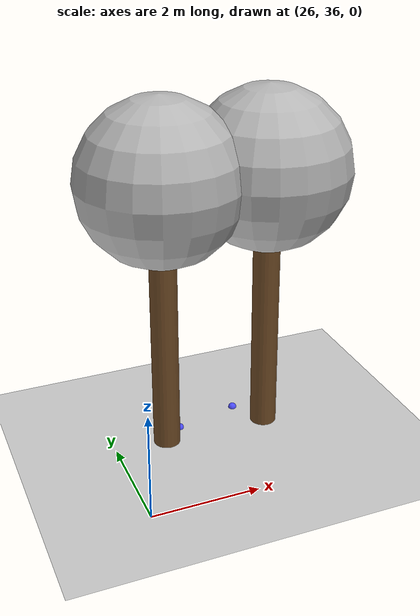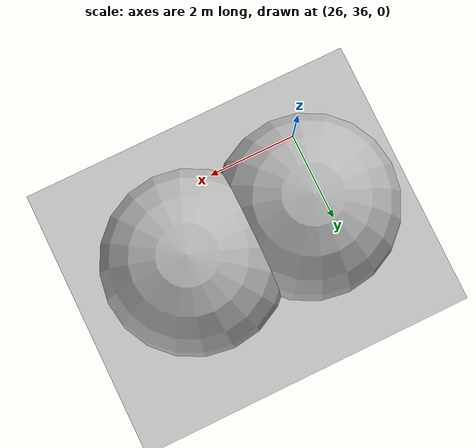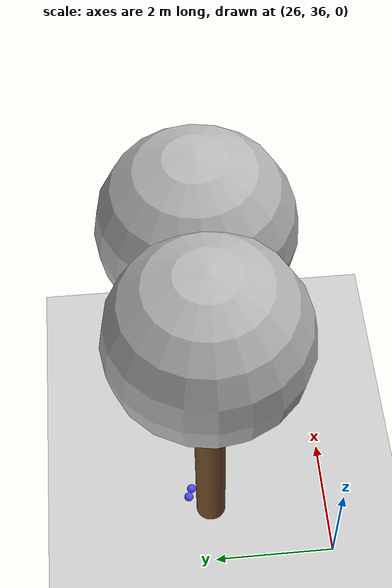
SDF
<sdf version="1.7">
 <world name="default">
  <model name="ground_plane">
   <static>1</static>
   <link name="link">
    <collision name="collision">
     <geometry><plane><normal>0 0 1</normal><size>100 100</size></plane></geometry>
     <surface>
      <contact><collide_bitmask>65535</collide_bitmask></contact>
      <friction><ode><mu>100</mu><mu2>50</mu2></ode></friction>
     </surface>
    </collision>
    <visual name="visual">
     <cast_shadows>0</cast_shadows>
     <geometry><plane><normal>0 0 1</normal><size>100 100</size></plane></geometry>
     <material>
      <script><uri>file://media/materials/scripts/gazebo.material</uri><name>Gazebo/Grey</name></script>
     </material>
    </visual>
   </link>
  </model>
  <model name="tree_simple_19">
   <static>1</static>
   <link name="link">
    <pose>0 0 0.1 0 -0 0</pose>
    <inertial>
     <mass>666</mass>
     <inertia>
      <ixx>0.0861167</ixx>
      <ixy>0</ixy>
      <ixz>0</ixz>
      <iyy>0.0861167</iyy>
      <iyz>0</iyz>
      <izz>0.0861167</izz>
     </inertia>
    </inertial>
    <collision name="collision_trunk">
     <pose>0 0 2 0 -0 0</pose>
     <geometry><cylinder><radius>0.25</radius><length>4</length></cylinder></geometry>
     <surface>
      <contact>
       <poissons_ratio>0.347</poissons_ratio>
       <elastic_modulus>8.8e+09</elastic_modulus>
       <ode><kp>100000</kp><kd>100</kd><max_vel>100</max_vel><min_depth>0.001</min_depth></ode>
      </contact>
      <friction>
       <torsional>
        <coefficient>1</coefficient>
        <use_patch_radius>0</use_patch_radius>
        <surface_radius>0.01</surface_radius>
       </torsional>
      </friction>
     </surface>
    </collision>
    <collision name="collision_treetop">
     <pose>0 0 5.2 0 -0 0</pose>
     <geometry><sphere><radius>1.5</radius></sphere></geometry>
     <surface>
      <contact>
       <poissons_ratio>0.347</poissons_ratio>
       <elastic_modulus>8.8e+09</elastic_modulus>
       <ode><kp>100000</kp><kd>100</kd><max_vel>100</max_vel><min_depth>0.001</min_depth></ode>
      </contact>
      <friction>
       <torsional>
        <coefficient>1</coefficient>
        <use_patch_radius>0</use_patch_radius>
        <surface_radius>0.01</surface_radius>
       </torsional>
      </friction>
     </surface>
    </collision>
    <visual name="trunk">
     <pose>0 0 2 0 -0 0</pose>
     <geometry><cylinder><radius>0.25</radius><length>4</length></cylinder></geometry>
     <material>
      <script>
       <uri>model://tree_simple/scripts</uri>
       <uri>model://tree_simple/materials/textures</uri>
       <name>TreeSimple/Trunk</name>
      </script>
     </material>
    </visual>
    <visual name="treetop">
     <pose>0 0 5.2 0 -0 0</pose>
     <geometry><sphere><radius>1.5</radius></sphere></geometry>
     <material>
      <script>
       <uri>model://tree_simple/scripts</uri>
       <uri>model://tree_simple/materials/textures</uri>
       <name>TreeSimple/Treetop</name>
      </script>
     </material>
    </visual>
   </link>
   <pose>27 38 -0.1 0 -0 0</pose>
  </model>
  <model name="tree_simple_20">
   <static>1</static>
   <link name="link">
    <pose>0 0 0.1 0 -0 0</pose>
    <inertial>
     <mass>666</mass>
     <inertia>
      <ixx>0.0861167</ixx>
      <ixy>0</ixy>
      <ixz>0</ixz>
      <iyy>0.0861167</iyy>
      <iyz>0</iyz>
      <izz>0.0861167</izz>
     </inertia>
    </inertial>
    <collision name="collision_trunk">
     <pose>0 0 2 0 -0 0</pose>
     <geometry><cylinder><radius>0.25</radius><length>4</length></cylinder></geometry>
     <surface>
      <contact>
       <poissons_ratio>0.347</poissons_ratio>
       <elastic_modulus>8.8e+09</elastic_modulus>
       <ode><kp>100000</kp><kd>100</kd><max_vel>100</max_vel><min_depth>0.001</min_depth></ode>
      </contact>
      <friction>
       <torsional>
        <coefficient>1</coefficient>
        <use_patch_radius>0</use_patch_radius>
        <surface_radius>0.01</surface_radius>
       </torsional>
      </friction>
     </surface>
    </collision>
    <collision name="collision_treetop">
     <pose>0 0 5.2 0 -0 0</pose>
     <geometry><sphere><radius>1.5</radius></sphere></geometry>
     <surface>
      <contact>
       <poissons_ratio>0.347</poissons_ratio>
       <elastic_modulus>8.8e+09</elastic_modulus>
       <ode><kp>100000</kp><kd>100</kd><max_vel>100</max_vel><min_depth>0.001</min_depth></ode>
      </contact>
      <friction>
       <torsional>
        <coefficient>1</coefficient>
        <use_patch_radius>0</use_patch_radius>
        <surface_radius>0.01</surface_radius>
       </torsional>
      </friction>
     </surface>
    </collision>
    <visual name="trunk">
     <pose>0 0 2 0 -0 0</pose>
     <geometry><cylinder><radius>0.25</radius><length>4</length></cylinder></geometry>
     <material>
      <script>
       <uri>model://tree_simple/scripts</uri>
       <uri>model://tree_simple/materials/textures</uri>
       <name>TreeSimple/Trunk</name>
      </script>
     </material>
    </visual>
    <visual name="treetop">
     <pose>0 0 5.2 0 -0 0</pose>
     <geometry><sphere><radius>1.5</radius></sphere></geometry>
     <material>
      <script>
       <uri>model://tree_simple/scripts</uri>
       <uri>model://tree_simple/materials/textures</uri>
       <name>TreeSimple/Treetop</name>
      </script>
     </material>
    </visual>
   </link>
   <pose>29 38 -0.1 0 -0 0</pose>
  </model>
  <model name="seed_blue_41">
   <link name="link">
    <inertial>
     <mass>1</mass>
     <inertia><ixx>0.1</ixx><ixy>0</ixy><ixz>0</ixz><iyy>0.1</iyy><iyz>0</iyz><izz>0.1</izz></inertia>
    </inertial>
    <visual name="visual">
     <geometry><sphere><radius>0.08</radius></sphere></geometry>
     <material>
      <script><name>Gazebo/Grey</name><uri>file://media/materials/scripts/gazebo.material</uri></script>
      <shader type="pixel"><normal_map>__default__</normal_map></shader>
      <ambient>0.3 0.3 1 1</ambient>
      <diffuse>0.7 0.7 0.7 1</diffuse>
      <specular>0.01 0.01 0.01 1</specular>
      <emissive>0 0 0 1</emissive>
     </material>
    </visual>
    <collision name="collision">
     <geometry><sphere><radius>0.0005</radius></sphere></geometry>
     <surface>
      <friction>
       <ode><mu>1</mu><mu2>1</mu2><fdir1>0 0 0</fdir1><slip1>0</slip1><slip2>0</slip2></ode>
       <torsional>
        <coefficient>1</coefficient>
        <patch_radius>0</patch_radius>
        <surface_radius>0</surface_radius>
        <use_patch_radius>1</use_patch_radius>
        <ode><slip>0</slip></ode>
       </torsional>
      </friction>
      <bounce><restitution_coefficient>0</restitution_coefficient><threshold>1e+06</threshold></bounce>
      <contact>
       <collide_without_contact>0</collide_without_contact>
       <collide_without_contact_bitmask>1</collide_without_contact_bitmask>
       <collide_bitmask>1</collide_bitmask>
       <ode>
        <soft_cfm>0</soft_cfm>
        <soft_erp>0.2</soft_erp>
        <kp>1e+13</kp>
        <kd>1</kd>
        <max_vel>0.01</max_vel>
        <min_depth>0</min_depth>
       </ode>
       <bullet>
        <split_impulse>1</split_impulse>
        <split_impulse_penetration_threshold>-0.01</split_impulse_penetration_threshold>
        <soft_cfm>0</soft_cfm>
        <soft_erp>0.2</soft_erp>
        <kp>1e+13</kp>
        <kd>1</kd>
       </bullet>
      </contact>
     </surface>
    </collision>
   </link>
   <static>0</static>
   <pose>28.6048 38.5979 0.0005 0 -0 0</pose>
  </model>
  <model name="seed_blue_42">
   <link name="link">
    <inertial>
     <mass>1</mass>
     <inertia><ixx>0.1</ixx><ixy>0</ixy><ixz>0</ixz><iyy>0.1</iyy><iyz>0</iyz><izz>0.1</izz></inertia>
    </inertial>
    <visual name="visual">
     <geometry><sphere><radius>0.08</radius></sphere></geometry>
     <material>
      <script><name>Gazebo/Grey</name><uri>file://media/materials/scripts/gazebo.material</uri></script>
      <shader type="pixel"><normal_map>__default__</normal_map></shader>
      <ambient>0.3 0.3 1 1</ambient>
      <diffuse>0.7 0.7 0.7 1</diffuse>
      <specular>0.01 0.01 0.01 1</specular>
      <emissive>0 0 0 1</emissive>
     </material>
    </visual>
    <collision name="collision">
     <geometry><sphere><radius>0.0005</radius></sphere></geometry>
     <surface>
      <friction>
       <ode><mu>1</mu><mu2>1</mu2><fdir1>0 0 0</fdir1><slip1>0</slip1><slip2>0</slip2></ode>
       <torsional>
        <coefficient>1</coefficient>
        <patch_radius>0</patch_radius>
        <surface_radius>0</surface_radius>
        <use_patch_radius>1</use_patch_radius>
        <ode><slip>0</slip></ode>
       </torsional>
      </friction>
      <bounce><restitution_coefficient>0</restitution_coefficient><threshold>1e+06</threshold></bounce>
      <contact>
       <collide_without_contact>0</collide_without_contact>
       <collide_without_contact_bitmask>1</collide_without_contact_bitmask>
       <collide_bitmask>1</collide_bitmask>
       <ode>
        <soft_cfm>0</soft_cfm>
        <soft_erp>0.2</soft_erp>
        <kp>1e+13</kp>
        <kd>1</kd>
        <max_vel>0.01</max_vel>
        <min_depth>0</min_depth>
       </ode>
       <bullet>
        <split_impulse>1</split_impulse>
        <split_impulse_penetration_threshold>-0.01</split_impulse_penetration_threshold>
        <soft_cfm>0</soft_cfm>
        <soft_erp>0.2</soft_erp>
        <kp>1e+13</kp>
        <kd>1</kd>
       </bullet>
      </contact>
     </surface>
    </collision>
   </link>
   <static>0</static>
   <pose>28.9876 37.9865 0.0005 0 -0 0</pose>
  </model>
  <model name="seed_blue_43">
   <link name="link">
    <inertial>
     <mass>1</mass>
     <inertia><ixx>0.1</ixx><ixy>0</ixy><ixz>0</ixz><iyy>0.1</iyy><iyz>0</iyz><izz>0.1</izz></inertia>
    </inertial>
    <visual name="visual">
     <geometry><sphere><radius>0.08</radius></sphere></geometry>
     <material>
      <script><name>Gazebo/Grey</name><uri>file://media/materials/scripts/gazebo.material</uri></script>
      <shader type="pixel"><normal_map>__default__</normal_map></shader>
      <ambient>0.3 0.3 1 1</ambient>
      <diffuse>0.7 0.7 0.7 1</diffuse>
      <specular>0.01 0.01 0.01 1</specular>
      <emissive>0 0 0 1</emissive>
     </material>
    </visual>
    <collision name="collision">
     <geometry><sphere><radius>0.0005</radius></sphere></geometry>
     <surface>
      <friction>
       <ode><mu>1</mu><mu2>1</mu2><fdir1>0 0 0</fdir1><slip1>0</slip1><slip2>0</slip2></ode>
       <torsional>
        <coefficient>1</coefficient>
        <patch_radius>0</patch_radius>
        <surface_radius>0</surface_radius>
        <use_patch_radius>1</use_patch_radius>
        <ode><slip>0</slip></ode>
       </torsional>
      </friction>
      <bounce><restitution_coefficient>0</restitution_coefficient><threshold>1e+06</threshold></bounce>
      <contact>
       <collide_without_contact>0</collide_without_contact>
       <collide_without_contact_bitmask>1</collide_without_contact_bitmask>
       <collide_bitmask>1</collide_bitmask>
       <ode>
        <soft_cfm>0</soft_cfm>
        <soft_erp>0.2</soft_erp>
        <kp>1e+13</kp>
        <kd>1</kd>
        <max_vel>0.01</max_vel>
        <min_depth>0</min_depth>
       </ode>
       <bullet>
        <split_impulse>1</split_impulse>
        <split_impulse_penetration_threshold>-0.01</split_impulse_penetration_threshold>
        <soft_cfm>0</soft_cfm>
        <soft_erp>0.2</soft_erp>
        <kp>1e+13</kp>
        <kd>1</kd>
       </bullet>
      </contact>
     </surface>
    </collision>
   </link>
   <static>0</static>
   <pose>27.37 38.309 0.0005 0 -0 0</pose>
  </model>
  <model name="seed_blue_45">
   <link name="link">
    <inertial>
     <mass>1</mass>
     <inertia><ixx>0.1</ixx><ixy>0</ixy><ixz>0</ixz><iyy>0.1</iyy><iyz>0</iyz><izz>0.1</izz></inertia>
    </inertial>
    <visual name="visual">
     <geometry><sphere><radius>0.08</radius></sphere></geometry>
     <material>
      <script><name>Gazebo/Grey</name><uri>file://media/materials/scripts/gazebo.material</uri></script>
      <shader type="pixel"><normal_map>__default__</normal_map></shader>
      <ambient>0.3 0.3 1 1</ambient>
      <diffuse>0.7 0.7 0.7 1</diffuse>
      <specular>0.01 0.01 0.01 1</specular>
      <emissive>0 0 0 1</emissive>
     </material>
    </visual>
    <collision name="collision">
     <geometry><sphere><radius>0.0005</radius></sphere></geometry>
     <surface>
      <friction>
       <ode><mu>1</mu><mu2>1</mu2><fdir1>0 0 0</fdir1><slip1>0</slip1><slip2>0</slip2></ode>
       <torsional>
        <coefficient>1</coefficient>
        <patch_radius>0</patch_radius>
        <surface_radius>0</surface_radius>
        <use_patch_radius>1</use_patch_radius>
        <ode><slip>0</slip></ode>
       </torsional>
      </friction>
      <bounce><restitution_coefficient>0</restitution_coefficient><threshold>1e+06</threshold></bounce>
      <contact>
       <collide_without_contact>0</collide_without_contact>
       <collide_without_contact_bitmask>1</collide_without_contact_bitmask>
       <collide_bitmask>1</collide_bitmask>
       <ode>
        <soft_cfm>0</soft_cfm>
        <soft_erp>0.2</soft_erp>
        <kp>1e+13</kp>
        <kd>1</kd>
        <max_vel>0.01</max_vel>
        <min_depth>0</min_depth>
       </ode>
       <bullet>
        <split_impulse>1</split_impulse>
        <split_impulse_penetration_threshold>-0.01</split_impulse_penetration_threshold>
        <soft_cfm>0</soft_cfm>
        <soft_erp>0.2</soft_erp>
        <kp>1e+13</kp>
        <kd>1</kd>
       </bullet>
      </contact>
     </surface>
    </collision>
   </link>
   <static>0</static>
   <pose>27.2138 38.369 0.0005 0 -0 0</pose>
  </model>
 </world>
</sdf>
